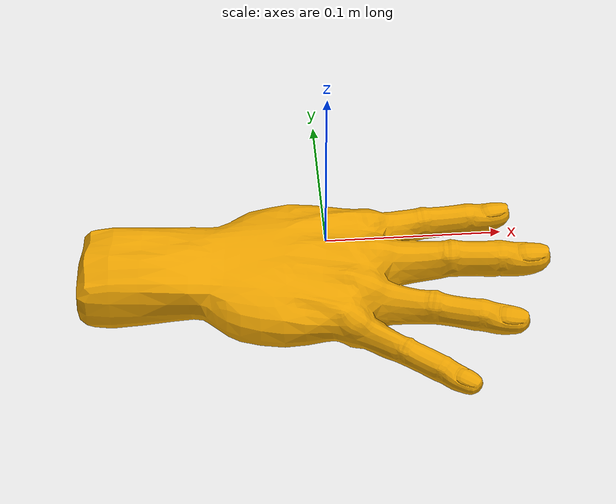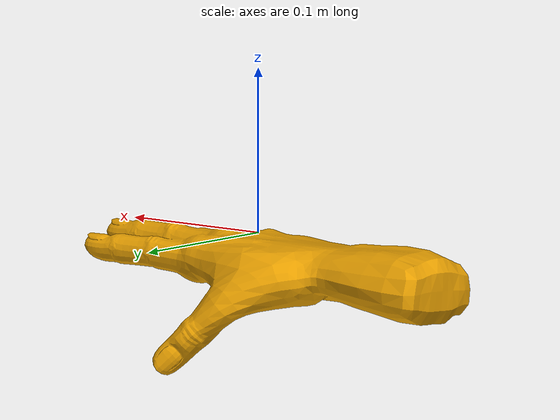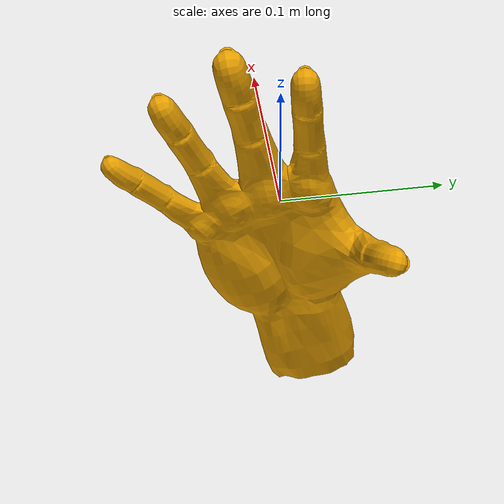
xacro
<?xml version="1.0"?>

<robot name="hand_right">
  <link name="base_link">
    <inertial>
      <origin xyz="0.0 0.0 0.0" />
      <mass value="1.0" />
      <inertia  ixx="1.0" ixy="0.0"  ixz="0.0"  iyy="1.0"  iyz="0.0"  izz="1.0" />
    </inertial>
    <visual>
      <origin xyz="0.0 0.0 0.0"/>
      <geometry>
        <mesh filename="package://trajectory_reshaping_world_visualizer/resources/realistic_hand/realistic_hand_right.dae"/>
      </geometry>
    </visual>
  </link>

  <gazebo reference="base_link">
	<turnGravityOff>true</turnGravityOff>
  </gazebo>

   <gazebo>
	<plugin name="gazebo_ros_force_gravity" filename="libgazebo_ros_force_gravity.so">
      <alwaysOn>true</alwaysOn>
      <update>100</update>
      <updateRate>100.0</updateRate>
      <bodyName>base_link</bodyName>
      <topicName>gravitational_force</topicName>
	  <modelTrajectoryPointPrefix>mdl_traj_point</modelTrajectoryPointPrefix>
	  <interactionMode>1</interactionMode> <!-- 1 is hand vector in 3D, 2 is sliding along path -->
	  <forceMode>2</forceMode> <!-- 1 is force, 2 is veloctiy vector field -->
	  <pushpullMode>1</pushpullMode> <!-- 1 is PUSH, 2 is PULL -->
	  <useHandsOption>1</useHandsOption> <!-- 1 is right hand only, 2 is both hands but 2 is NOT TESTED YET -->
	  <mirrorAroundClosestPoint>1</mirrorAroundClosestPoint> <!-- 0 is disabled, 1 is enabled for mirroring around closest point -->
	  <handScaleTranslationalMax>75.0</handScaleTranslationalMax>
	  <forceMinDistanceThreshold>0.5</forceMinDistanceThreshold>
	  <forceMaxDistanceThreshold>25.0</forceMaxDistanceThreshold>
	  <forceVelocityScaleTranslationalMax>7.0</forceVelocityScaleTranslationalMax>
	  <mockupMode>1</mockupMode> <!-- 0 is manual setpoint for disaster mockup scene, 1 is synthetic mockup, 2 is real-world lab setup -->
    </plugin>
  </gazebo>
</robot>
